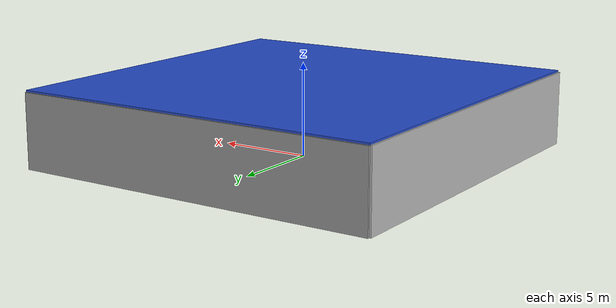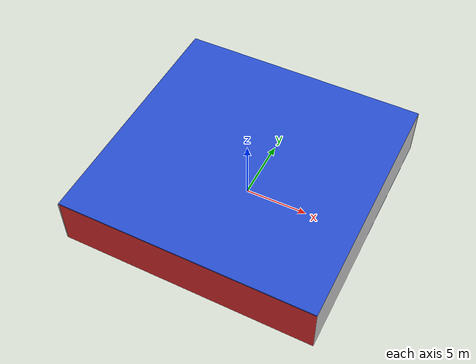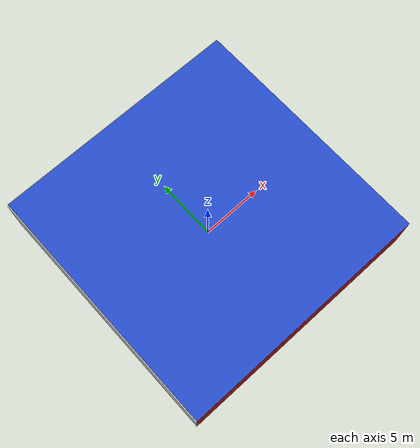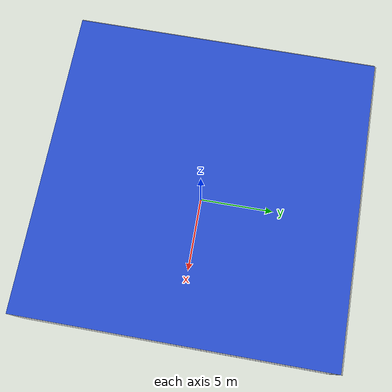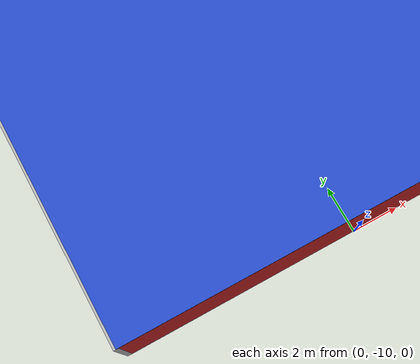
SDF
<sdf version="1.4">
 <world name="default">
  <physics type="ode">
   <max_step_size>0.001</max_step_size>
   <real_time_factor>1</real_time_factor>
   <real_time_update_rate>1000</real_time_update_rate>
   <gravity>0 0 -9.8</gravity>
  </physics>
  <scene><ambient>0.4 0.4 0.4 1</ambient><background>0.7 0.7 0.7 1</background><shadows>1</shadows></scene>
  <model name="Surrounding">
   <static>1</static>
   <link name="Ceiling">
    <collision name="Ceiling_Collision"><geometry><box><size>20 20 0.1</size></box></geometry></collision>
    <visual name="Ceiling_Visual">
     <geometry><box><size>20 20 0.1</size></box></geometry>
     <material>
      <script><uri>file://media/materials/scripts/gazebo.material</uri><name>Gazebo/BlueGlow</name></script>
     </material>
    </visual>
    <pose>0 0 4.05 0 0 0</pose>
   </link>
   <link name="Wall_South">
    <collision name="Wall_South_Collision">
     <geometry><box><size>20 0 4</size></box></geometry>
     <pose>0 0 2 0 -0 0</pose>
    </collision>
    <visual name="Wall_South_Visual">
     <pose>0 0 2 0 -0 0</pose>
     <geometry><box><size>20 0 4</size></box></geometry>
     <material>
      <script><uri>file://media/materials/scripts/gazebo.material</uri><name>Gazebo/RedGlow</name></script>
     </material>
    </visual>
    <velocity_decay><linear>0</linear><angular>0</angular></velocity_decay>
    <pose>0 -10 0 0 -0 0</pose>
   </link>
   <link name="Wall_East">
    <collision name="Wall_21_Collision">
     <geometry><box><size>20 0 4</size></box></geometry>
     <pose>0 0 2 0 -0 0</pose>
    </collision>
    <visual name="Wall_21_Visual">
     <pose>0 0 2 0 -0 0</pose>
     <geometry><box><size>20 0 4</size></box></geometry>
     <material>
      <script><uri>file://media/materials/scripts/gazebo.material</uri><name>Gazebo/WhiteGlow</name></script>
     </material>
    </visual>
    <velocity_decay><linear>0</linear><angular>0</angular></velocity_decay>
    <pose>10 0 0 0 -0 1.5708</pose>
   </link>
   <link name="Wall_North">
    <collision name="Wall_22_Collision">
     <geometry><box><size>20 0.2 4</size></box></geometry>
     <pose>0 0 2 0 -0 0</pose>
    </collision>
    <visual name="Wall_22_Visual">
     <pose>0 0 2 0 -0 0</pose>
     <geometry><box><size>20 0.2 4</size></box></geometry>
     <material>
      <script><uri>file://media/materials/scripts/gazebo.material</uri><name>Gazebo/Grey</name></script>
     </material>
    </visual>
    <velocity_decay><linear>0</linear><angular>0</angular></velocity_decay>
    <pose>0 10 0 0 -0 0</pose>
   </link>
   <link name="Wall_West">
    <collision name="Wall_23_Collision">
     <geometry><box><size>20 0.2 4</size></box></geometry>
     <pose>0 0 2 0 -0 0</pose>
    </collision>
    <visual name="Wall_23_Visual">
     <pose>0 0 2 0 -0 0</pose>
     <geometry><box><size>20 0.2 4</size></box></geometry>
     <material>
      <script><uri>file://media/materials/scripts/gazebo.material</uri><name>Gazebo/LightOff</name></script>
     </material>
    </visual>
    <velocity_decay><linear>0</linear><angular>0</angular></velocity_decay>
    <pose>-10 0 0 0 0 -1.5708</pose>
   </link>
   <link name="Ground_link">
    <collision name="collision">
     <pose>0 0 .05 0 -0 0</pose>
     <geometry><box><size>20 20 0.1</size></box></geometry>
    </collision>
    <visual name="visual">
     <pose>0 0 .05 0 -0 0</pose>
     <geometry><box><size>20 20 0.1</size></box></geometry>
     <material>
      <script><uri>file://media/materials/scripts/gazebo.material</uri><name>Gazebo/BlueLaser</name></script>
     </material>
    </visual>
   </link>
   <static>1</static>
  </model>
  <spherical_coordinates>
   <surface_model>EARTH_WGS84</surface_model>
   <latitude_deg>0</latitude_deg>
   <longitude_deg>0</longitude_deg>
   <elevation>0</elevation>
   <heading_deg>0</heading_deg>
  </spherical_coordinates>
  <light name="lightball_0" type="diffuse">
   <diffuse>0.8 0.8 0.8 1</diffuse>
   <specular>0.2 0.2 0.2 1</specular>
   <attenuation>
    <range>100</range>
    <constant>0.7</constant>
    <linear>0.01</linear>
    <quadratic>0.001</quadratic>
   </attenuation>
   <direction>-0.5 0.1 -0.9</direction>
   <pose>6.30869410963 -9.38185134982 1.90094871313 0 0 0</pose>
  </light>
  <light name="lightball_1" type="diffuse">
   <diffuse>0.8 0.8 0.8 1</diffuse>
   <specular>0.2 0.2 0.2 1</specular>
   <attenuation>
    <range>100</range>
    <constant>0.7</constant>
    <linear>0.01</linear>
    <quadratic>0.001</quadratic>
   </attenuation>
   <direction>-0.5 0.1 -0.9</direction>
   <pose>-0.735227924881 5.49636022373 1.42454124925 0 0 0</pose>
  </light>
  <light name="lightball_2" type="diffuse">
   <diffuse>0.8 0.8 0.8 1</diffuse>
   <specular>0.2 0.2 0.2 1</specular>
   <attenuation>
    <range>100</range>
    <constant>0.7</constant>
    <linear>0.01</linear>
    <quadratic>0.001</quadratic>
   </attenuation>
   <direction>-0.5 0.1 -0.9</direction>
   <pose>-4.09047325286 -0.173400703357 2.60145413765 0 0 0</pose>
  </light>
  <light name="lightball_3" type="diffuse">
   <diffuse>0.8 0.8 0.8 1</diffuse>
   <specular>0.2 0.2 0.2 1</specular>
   <attenuation>
    <range>100</range>
    <constant>0.7</constant>
    <linear>0.01</linear>
    <quadratic>0.001</quadratic>
   </attenuation>
   <direction>-0.5 0.1 -0.9</direction>
   <pose>6.14711706781 8.72695515381 3.64449023952 0 0 0</pose>
  </light>
  <light name="lightball_4" type="diffuse">
   <diffuse>0.8 0.8 0.8 1</diffuse>
   <specular>0.2 0.2 0.2 1</specular>
   <attenuation>
    <range>100</range>
    <constant>0.7</constant>
    <linear>0.01</linear>
    <quadratic>0.001</quadratic>
   </attenuation>
   <direction>-0.5 0.1 -0.9</direction>
   <pose>-0.262702167985 6.90392297706 1.76225205771 0 0 0</pose>
  </light>
  <light name="lightball_5" type="diffuse">
   <diffuse>0.8 0.8 0.8 1</diffuse>
   <specular>0.2 0.2 0.2 1</specular>
   <attenuation>
    <range>100</range>
    <constant>0.7</constant>
    <linear>0.01</linear>
    <quadratic>0.001</quadratic>
   </attenuation>
   <direction>-0.5 0.1 -0.9</direction>
   <pose>-8.38863071858 3.29743322326 2.42105749152 0 0 0</pose>
  </light>
  <light name="lightball_6" type="diffuse">
   <diffuse>0.8 0.8 0.8 1</diffuse>
   <specular>0.2 0.2 0.2 1</specular>
   <attenuation>
    <range>100</range>
    <constant>0.7</constant>
    <linear>0.01</linear>
    <quadratic>0.001</quadratic>
   </attenuation>
   <direction>-0.5 0.1 -0.9</direction>
   <pose>2.57819268772 4.86125701052 2.56516087603 0 0 0</pose>
  </light>
  <light name="lightball_7" type="diffuse">
   <diffuse>0.8 0.8 0.8 1</diffuse>
   <specular>0.2 0.2 0.2 1</specular>
   <attenuation>
    <range>100</range>
    <constant>0.7</constant>
    <linear>0.01</linear>
    <quadratic>0.001</quadratic>
   </attenuation>
   <direction>-0.5 0.1 -0.9</direction>
   <pose>-8.54597583962 3.03558334905 2.11902088924 0 0 0</pose>
  </light>
  <include><uri>model://table</uri><pose>-7.950723887 -7.81286278699 0 0 0 0.226771812301</pose></include>
  <include><uri>model://cabinet</uri><pose>-8.51453924636 2.56371327205 0 0 0 1.23921758191</pose></include>
  <include>
   <uri>model://robocup_3Dsim_goal</uri>
   <pose>-5.56981186629 -8.65529303811 0 0 0 2.54739305322</pose>
  </include>
  <include><uri>model://table</uri><pose>1.99280429939 -2.06992455662 0 0 0 1.68841697502</pose></include>
  <include>
   <uri>model://construction_cone</uri>
   <pose>2.46371959117 5.56574881629 0 0 0 0.682102267153</pose>
  </include>
  <include>
   <uri>model://construction_cone</uri>
   <pose>7.01670221664 8.51849713568 0 0 0 1.49014425327</pose>
  </include>
 </world>
</sdf>

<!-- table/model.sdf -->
<sdf version="1.5">
  <model name="table">
    <static>true</static>
    <link name="link">
      <collision name="surface">
        <pose>0 0 1.0 0 0 0</pose>
        <geometry>
          <box>
            <size>1.5 0.8 0.03</size>
          </box>
        </geometry>
        <surface>
          <friction>
            <ode>
              <mu>0.6</mu>
              <mu2>0.6</mu2>
            </ode>
          </friction>
        </surface>
      </collision>
      <visual name="visual1">
        <pose>0 0 1.0 0 0 0</pose>
        <geometry>
          <box>
            <size>1.5 0.8 0.03</size>
          </box>
        </geometry>
        <material>
          <script>
            <uri>model://media/materials/scripts/gazebo.material</uri>
            <name>Gazebo/Wood</name>
          </script>
        </material>
      </visual>
      <collision name="front_left_leg">
        <pose>0.68 0.38 0.5 0 0 0</pose>
        <geometry>
          <cylinder>
            <radius>0.02</radius>
            <length>1.0</length>
          </cylinder>
        </geometry>
      </collision>
      <visual name="front_left_leg">
        <pose>0.68 0.38 0.5 0 0 0</pose>
        <geometry>
          <cylinder>
            <radius>0.02</radius>
            <length>1.0</length>
          </cylinder>
        </geometry>
        <material>
          <script>
            <uri>model://media/materials/scripts/gazebo.material</uri>
            <name>Gazebo/Grey</name>
          </script>
        </material>
      </visual>
      <collision name="front_right_leg">
        <pose>0.68 -0.38 0.5 0 0 0</pose>
        <geometry>
          <cylinder>
            <radius>0.02</radius>
            <length>1.0</length>
          </cylinder>
        </geometry>
      </collision>
      <visual name="front_right_leg">
        <pose>0.68 -0.38 0.5 0 0 0</pose>
        <geometry>
          <cylinder>
            <radius>0.02</radius>
            <length>1.0</length>
          </cylinder>
        </geometry>
        <material>
          <script>
            <uri>model://media/materials/scripts/gazebo.material</uri>
            <name>Gazebo/Grey</name>
          </script>
        </material>
      </visual>
      <collision name="back_right_leg">
        <pose>-0.68 -0.38 0.5 0 0 0</pose>
        <geometry>
          <cylinder>
            <radius>0.02</radius>
            <length>1.0</length>
          </cylinder>
        </geometry>
      </collision>
      <visual name="back_right_leg">
        <pose>-0.68 -0.38 0.5 0 0 0</pose>
        <geometry>
          <cylinder>
            <radius>0.02</radius>
            <length>1.0</length>
          </cylinder>
        </geometry>
        <material>
          <script>
            <uri>model://media/materials/scripts/gazebo.material</uri>
            <name>Gazebo/Grey</name>
          </script>
        </material>
      </visual>
      <collision name="back_left_leg">
        <pose>-0.68 0.38 0.5 0 0 0</pose>
        <geometry>
          <cylinder>
            <radius>0.02</radius>
            <length>1.0</length>
          </cylinder>
        </geometry>
      </collision>
      <visual name="back_left_leg">
        <pose>-0.68 0.38 0.5 0 0 0</pose>
        <geometry>
          <cylinder>
            <radius>0.02</radius>
            <length>1.0</length>
          </cylinder>
        </geometry>
        <material>
          <script>
            <uri>model://media/materials/scripts/gazebo.material</uri>
            <name>Gazebo/Grey</name>
          </script>
        </material>
      </visual>
    </link>
  </model>
</sdf>

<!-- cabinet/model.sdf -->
<sdf version="1.5">
  <model name="cabinet">
    <static>true</static>
    <link name="cabinet_bottom_plate">
      <inertial>
        <pose>0 0 -1 0 0 0</pose>
        <inertia>
          <ixx>2.050000</ixx>
          <ixy>0</ixy>
          <ixz>0</ixz>
          <iyy>2.050000</iyy>
          <iyz>0</iyz>
          <izz>2.050000</izz>
        </inertia>
        <mass>25.000000</mass>
      </inertial>
      <collision name="cabinet_bottom_plate_geom">
        <pose>0 0 0.010000 0 0 0</pose>
        <geometry>
          <box>
            <size>0.450000 0.450000 0.020000</size>
          </box>
        </geometry>
      </collision>
      <visual name="cabinet_bottom_plate_geom_visual">
        <pose>0 0 0.010000 0 0 0</pose>
        <geometry>
          <box>
            <size>0.450000 0.450000 0.020000</size>
          </box>
        </geometry>
        <material>
          <script>
            <uri>model://media/materials/scripts/gazebo.material</uri>
            <name>Gazebo/Wood</name>
          </script>
        </material>
      </visual>
      <collision name="cabinet_bottom_plate_geom_cabinet_back_plate">
        <pose>0.235000 0 0.510000 0 0 0</pose>
        <geometry>
          <box>
            <size>0.020000 0.450000 1.020000</size>
          </box>
        </geometry>
      </collision>
      <visual name="cabinet_bottom_plate_geom_cabinet_back_plate_visual">
        <pose>0.235000 0 0.510000 0 0 0</pose>
        <geometry>
          <box>
            <size>0.020000 0.450000 1.020000</size>
          </box>
        </geometry>
        <material>
          <script>
            <uri>model://media/materials/scripts/gazebo.material</uri>
            <name>Gazebo/Wood</name>
          </script>
        </material>
      </visual>
      <collision name="cabinet_bottom_plate_geom_cabinet_left_plate">
        <pose>0 0.235000 0.510000 0 0 0</pose>
        <geometry>
          <box>
            <size>0.450000 0.020000 1.020000</size>
          </box>
        </geometry>
      </collision>
      <visual name="cabinet_bottom_plate_geom_cabinet_left_plate_visual">
        <pose>0 0.235000 0.510000 0 0 0</pose>
        <geometry>
          <box>
            <size>0.450000 0.020000 1.020000</size>
          </box>
        </geometry>
        <material>
          <script>
            <uri>model://media/materials/scripts/gazebo.material</uri>
            <name>Gazebo/Wood</name>
          </script>
        </material>
      </visual>
      <collision name="cabinet_bottom_plate_geom_cabinet_middle_plate">
        <pose>0 0 0.510000 0 0 0</pose>
        <geometry>
          <box>
            <size>0.450000 0.450000 0.020000</size>
          </box>
        </geometry>
      </collision>
      <visual name="cabinet_bottom_plate_geom_cabinet_middle_plate_visual">
        <pose>0 0 0.510000 0 0 0</pose>
        <geometry>
          <box>
            <size>0.450000 0.450000 0.020000</size>
          </box>
        </geometry>
        <material>
          <script>
            <uri>model://media/materials/scripts/gazebo.material</uri>
            <name>Gazebo/Wood</name>
          </script>
        </material>
      </visual>
      <collision name="cabinet_bottom_plate_geom_cabinet_right_plate">
        <pose>0 -0.235000 0.510000 0 0 0</pose>
        <geometry>
          <box>
            <size>0.450000 0.020000 1.020000</size>
          </box>
        </geometry>
      </collision>
      <visual name="cabinet_bottom_plate_geom_cabinet_right_plate_visual">
        <pose>0 -0.235000 0.510000 0 0 0</pose>
        <geometry>
          <box>
            <size>0.450000 0.020000 1.020000</size>
          </box>
        </geometry>
        <material>
          <script>
            <uri>model://media/materials/scripts/gazebo.material</uri>
            <name>Gazebo/Wood</name>
          </script>
        </material>
      </visual>
      <collision name="cabinet_bottom_plate_geom_cabinet_top_plate">
        <pose>0 0 1.010000 0 0 0</pose>
        <geometry>
          <box>
            <size>0.450000 0.450000 0.020000</size>
          </box>
        </geometry>
      </collision>
      <visual name="cabinet_bottom_plate_geom_cabinet_top_plate_visual">
        <pose>0 0 1.010000 0 0 0</pose>
        <geometry>
          <box>
            <size>0.450000 0.450000 0.020000</size>
          </box>
        </geometry>
        <material>
          <script>
            <uri>model://media/materials/scripts/gazebo.material</uri>
            <name>Gazebo/Wood</name>
          </script>
        </material>
      </visual>
    </link>
  </model>
</sdf>

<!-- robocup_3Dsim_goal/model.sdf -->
<sdf version="1.5">
  <model name="robocup_3d_goal">
    <static>true</static>
    <link name="left_post">
      <pose>0 1.05 0.45 0 0 0</pose>
      <collision name="collision">
        <geometry>
          <cylinder>
            <radius>0.05</radius>
            <length>0.9</length>
          </cylinder>
        </geometry>
      </collision>
      <visual name="visual">
        <geometry>
          <cylinder>
            <radius>0.05</radius>
            <length>0.9</length>
          </cylinder>
        </geometry>
        <material>
          <script>
            <uri>file://media/materials/scripts/gazebo.material</uri>
            <name>Gazebo/ZincYellow</name>
          </script>
        </material>
      </visual>
    </link>
    <link name="left_support_horiz_lower">
      <pose>0.30 1.05 0.01 0 0 0</pose>
      <collision name="collision">
        <geometry>
          <box>
            <size>0.50 0.02 0.02</size>
          </box>
        </geometry>
      </collision>
      <visual name="visual">
        <geometry>
          <box>
            <size>0.50 0.02 0.02</size>
          </box>
        </geometry>
        <material>
          <script>
            <uri>file://media/materials/scripts/gazebo.material</uri>
            <name>Gazebo/White</name>
          </script>
        </material>
      </visual>
    </link>
    <link name="left_support_horiz_upper">
      <pose>0.30 1.05 0.79 0 0 0</pose>
      <collision name="collision">
        <geometry>
          <box>
            <size>0.50 0.02 0.02</size>
          </box>
        </geometry>
      </collision>
      <visual name="visual">
        <geometry>
          <box>
            <size>0.50 0.02 0.02</size>
          </box>
        </geometry>
        <material>
          <script>
            <uri>file://media/materials/scripts/gazebo.material</uri>
            <name>Gazebo/White</name>
          </script>
        </material>
      </visual>
    </link>
    <link name="left_support_vertical">
      <pose>0.56 1.05 0.4 0 1.5708 0</pose>
      <collision name="collision">
        <geometry>
          <box>
            <size>0.80 0.02 0.02</size>
          </box>
        </geometry>
      </collision>
      <visual name="visual">
        <geometry>
          <box>
            <size>0.80 0.02 0.02</size>
          </box>
        </geometry>
        <material>
          <script>
            <uri>file://media/materials/scripts/gazebo.material</uri>
            <name>Gazebo/White</name>
          </script>
        </material>
      </visual>
    </link>
    <link name="right_support_horiz_lower">
      <pose>0.30 -1.05 0.01 0 0 0</pose>
      <collision name="collision">
        <geometry>
          <box>
            <size>0.50 0.02 0.02</size>
          </box>
        </geometry>
      </collision>
      <visual name="visual">
        <geometry>
          <box>
            <size>0.50 0.02 0.02</size>
          </box>
        </geometry>
        <material>
          <script>
            <uri>file://media/materials/scripts/gazebo.material</uri>
            <name>Gazebo/White</name>
          </script>
        </material>
      </visual>
    </link>
    <link name="right_support_horiz_upper">
      <pose>0.30 -1.05 0.79 0 0 0</pose>
      <collision name="collision">
        <geometry>
          <box>
            <size>0.50 0.02 0.02</size>
          </box>
        </geometry>
      </collision>
      <visual name="visual">
        <geometry>
          <box>
            <size>0.50 0.02 0.02</size>
          </box>
        </geometry>
        <material>
          <script>
            <uri>file://media/materials/scripts/gazebo.material</uri>
            <name>Gazebo/White</name>
          </script>
        </material>
      </visual>
    </link>
    <link name="right_support_vertical">
      <pose>0.56 -1.05 0.4 0 1.5708 0</pose>
      <collision name="collision">
        <geometry>
          <box>
            <size>0.80 0.02 0.02</size>
          </box>
        </geometry>
      </collision>
      <visual name="visual">
        <geometry>
          <box>
            <size>0.80 0.02 0.02</size>
          </box>
        </geometry>
        <material>
          <script>
            <uri>file://media/materials/scripts/gazebo.material</uri>
            <name>Gazebo/White</name>
          </script>
        </material>
      </visual>
    </link>
    <link name="center_support_horiz_lower">
      <pose>0.56 0 0.01 0 1.5708 0</pose>
      <collision name="collision">
        <geometry>
          <box>
            <size>0.02 2.08 0.02</size>
          </box>
        </geometry>
      </collision>
      <visual name="visual">
        <geometry>
          <box>
            <size>0.02 2.08 0.02</size>
          </box>
        </geometry>
        <material>
          <script>
            <uri>file://media/materials/scripts/gazebo.material</uri>
            <name>Gazebo/White</name>
          </script>
        </material>
      </visual>
    </link>
    <link name="center_support_horiz_upper">
      <pose>0.56 0 0.79 0 1.5708 0</pose>
      <collision name="collision">
        <geometry>
          <box>
            <size>0.02 2.08 0.02</size>
          </box>
        </geometry>
      </collision>
      <visual name="visual">
        <geometry>
          <box>
            <size>0.02 2.08 0.02</size>
          </box>
        </geometry>
        <material>
          <script>
            <uri>file://media/materials/scripts/gazebo.material</uri>
            <name>Gazebo/White</name>
          </script>
        </material>
      </visual>
    </link>
    <link name="right_post">
      <pose>0 -1.05 0.45 0 0 0</pose>
      <collision name="collision">
        <geometry>
          <cylinder>
            <radius>0.05</radius>
            <length>0.9</length>
          </cylinder>
        </geometry>
      </collision>
      <visual name="visual">
        <geometry>
          <cylinder>
            <radius>0.05</radius>
            <length>0.9</length>
          </cylinder>
        </geometry>
        <material>
          <script>
            <uri>file://media/materials/scripts/gazebo.material</uri>
            <name>Gazebo/ZincYellow</name>
          </script>
        </material>
      </visual>
    </link>
    <link name="crossbar">
      <pose>0 0 0.85 1.57 1.57 0</pose>
      <collision name="collision">
        <geometry>
          <cylinder>
            <radius>0.05</radius>
            <length>2.0</length>
          </cylinder>
        </geometry>
      </collision>
      <visual name="visual">
        <geometry>
          <cylinder>
            <radius>0.05</radius>
            <length>2.0</length>
          </cylinder>
        </geometry>
        <material>
          <script>
            <uri>file://media/materials/scripts/gazebo.material</uri>
            <name>Gazebo/ZincYellow</name>
          </script>
        </material>
      </visual>
    </link>
    <link name="center_net">
      <pose>0.56 0 0.40 0 0 0</pose>
      <collision name="collision">
        <geometry>
          <box>
            <size>0.01 2.1 0.80</size>
          </box>
        </geometry>
      </collision>
      <visual name="visual">
        <geometry>
          <box>
            <size>0.01 2.1 0.80</size>
          </box>
        </geometry>
        <material>
          <script>
            <uri>model://../model_source/models/robocup09_spl_field/materials/scripts/</uri>
            <uri>model://../model_source/models/robocup09_spl_field/materials/textures/</uri>
            <name>RoboCup/Net</name>
          </script>
        </material>
      </visual>
    </link>
    <link name="left_net">
      <pose>0.30 1.05 0.40 0 0 0</pose>
      <collision name="collision">
        <geometry>
          <box>
            <size>0.50 0.01 0.76</size>
          </box>
        </geometry>
      </collision>
      <visual name="visual">
        <geometry>
          <box>
            <size>0.50 0.01 0.76</size>
          </box>
        </geometry>
        <material>
          <script>
            <uri>model://../model_source/models/robocup09_spl_field/materials/scripts/</uri>
            <uri>model://../model_source/models/robocup09_spl_field/materials/textures/</uri>
            <name>RoboCup/Net</name>
          </script>
        </material>
      </visual>
    </link>
    <link name="right_net">
      <pose>0.30 -1.05 0.40 0 0 0</pose>
      <collision name="collision">
        <geometry>
          <box>
            <size>0.50 0.01 0.76</size>
          </box>
        </geometry>
      </collision>
      <visual name="visual">
        <geometry>
          <box>
            <size>0.50 0.01 0.76</size>
          </box>
        </geometry>
        <material>
          <script>
            <uri>model://../model_source/models/robocup09_spl_field/materials/scripts/</uri>
            <uri>model://../model_source/models/robocup09_spl_field/materials/textures/</uri>
            <name>RoboCup/Net</name>
          </script>
        </material>
      </visual>
    </link>
  </model>
</sdf>

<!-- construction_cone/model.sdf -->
<sdf version="1.5">
  <model name="Construction Cone">
    <link name="link">
      <collision name="collision">
        <geometry>
          <mesh>
            <scale>10 10 10</scale>
            <uri>file://isr-testbed/construction_cone/meshes/construction_cone.dae</uri>
          </mesh>
        </geometry>
      </collision>
      <visual name="visual">
        <geometry>
          <mesh>
            <scale>10 10 10</scale>
            <uri>file://isr-testbed/construction_cone/meshes/construction_cone.dae</uri>
          </mesh>
        </geometry>
      </visual>
    </link>
  </model>
</sdf>
